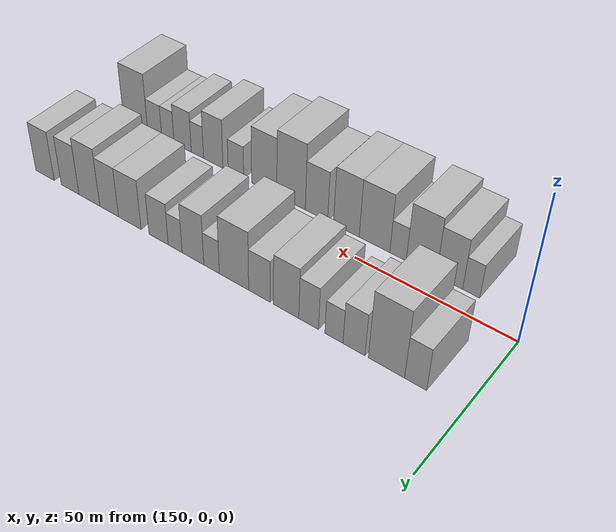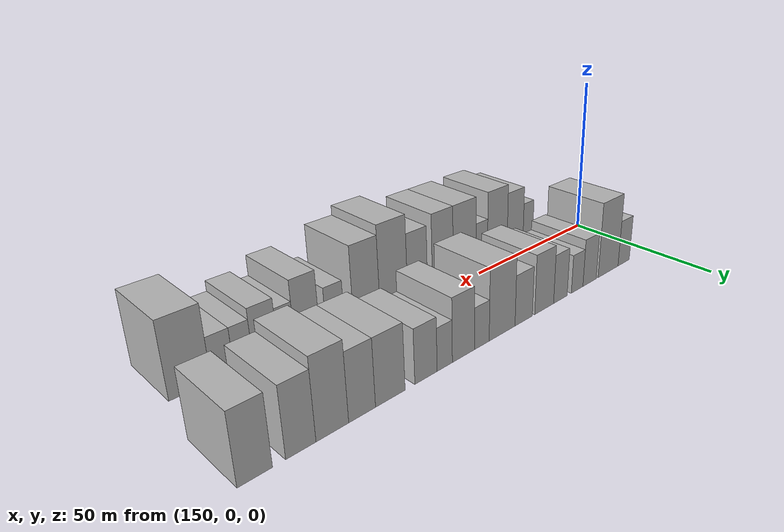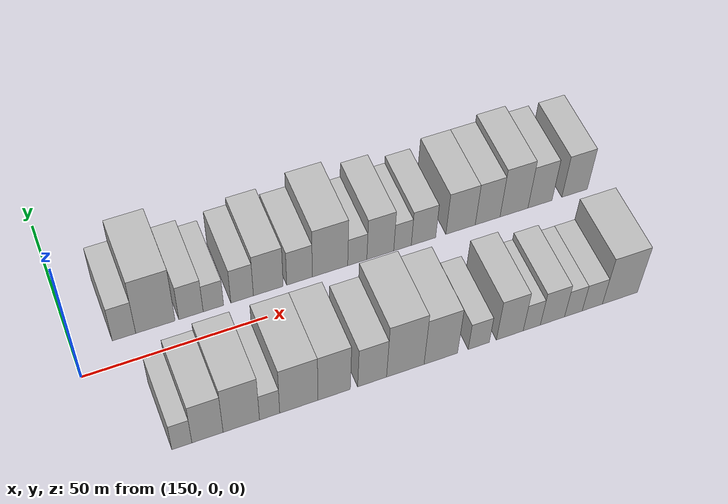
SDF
<sdf version="1.6">
 <world name="default">
  <model name="building_16">
   <static>1</static>
   <pose>163.4410 17.5000 0 0.000000 0.000000 1.570796</pose>
   <link name="link">
    <pose>0 0 7.50 0 0 0</pose>
    <collision name="collision"><geometry><box><size>20.0000 6.3091 15.0000</size></box></geometry></collision>
    <visual name="visual">
     <cast_shadows>0</cast_shadows>
     <geometry><box><size>20.0000 6.3091 15.0000</size></box></geometry>
     <material>
      <script>
       <uri>model://HANNAS_wall/materials/scripts</uri>
       <uri>model://HANNAS_wall/materials/textures</uri>
       <name>vrc/HANNAS_wall</name>
      </script>
     </material>
    </visual>
   </link>
  </model>
  <model name="building_17">
   <static>1</static>
   <pose>171.9208 17.5000 0 0.000000 0.000000 1.570796</pose>
   <link name="link">
    <pose>0 0 12.00 0 0 0</pose>
    <collision name="collision"><geometry><box><size>20.0000 10.6506 24.0000</size></box></geometry></collision>
    <visual name="visual">
     <cast_shadows>0</cast_shadows>
     <geometry><box><size>20.0000 10.6506 24.0000</size></box></geometry>
     <material>
      <script>
       <uri>model://HANNAS_wall/materials/scripts</uri>
       <uri>model://HANNAS_wall/materials/textures</uri>
       <name>vrc/HANNAS_wall</name>
      </script>
     </material>
    </visual>
   </link>
  </model>
  <model name="building_18">
   <static>1</static>
   <pose>181.5839 17.5000 0 0.000000 0.000000 1.570796</pose>
   <link name="link">
    <pose>0 0 7.50 0 0 0</pose>
    <collision name="collision"><geometry><box><size>20.0000 6.6756 15.0000</size></box></geometry></collision>
    <visual name="visual">
     <cast_shadows>0</cast_shadows>
     <geometry><box><size>20.0000 6.6756 15.0000</size></box></geometry>
     <material>
      <script>
       <uri>model://HANNAS_wall/materials/scripts</uri>
       <uri>model://HANNAS_wall/materials/textures</uri>
       <name>vrc/HANNAS_wall</name>
      </script>
     </material>
    </visual>
   </link>
  </model>
  <model name="building_19">
   <static>1</static>
   <pose>187.7343 17.5000 0 0.000000 0.000000 1.570796</pose>
   <link name="link">
    <pose>0 0 6.00 0 0 0</pose>
    <collision name="collision"><geometry><box><size>20.0000 5.6251 12.0000</size></box></geometry></collision>
    <visual name="visual">
     <cast_shadows>0</cast_shadows>
     <geometry><box><size>20.0000 5.6251 12.0000</size></box></geometry>
     <material>
      <script>
       <uri>model://HANNAS_wall/materials/scripts</uri>
       <uri>model://HANNAS_wall/materials/textures</uri>
       <name>vrc/HANNAS_wall</name>
      </script>
     </material>
    </visual>
   </link>
  </model>
  <model name="building_20">
   <static>1</static>
   <pose>195.6751 17.5000 0 0.000000 0.000000 1.570796</pose>
   <link name="link">
    <pose>0 0 7.50 0 0 0</pose>
    <collision name="collision"><geometry><box><size>20.0000 6.2567 15.0000</size></box></geometry></collision>
    <visual name="visual">
     <cast_shadows>0</cast_shadows>
     <geometry><box><size>20.0000 6.2567 15.0000</size></box></geometry>
     <material>
      <script>
       <uri>model://HANNAS_wall/materials/scripts</uri>
       <uri>model://HANNAS_wall/materials/textures</uri>
       <name>vrc/HANNAS_wall</name>
      </script>
     </material>
    </visual>
   </link>
  </model>
  <model name="building_21">
   <static>1</static>
   <pose>202.9608 17.5000 0 0.000000 0.000000 1.570796</pose>
   <link name="link">
    <pose>0 0 9.00 0 0 0</pose>
    <collision name="collision"><geometry><box><size>20.0000 8.3146 18.0000</size></box></geometry></collision>
    <visual name="visual">
     <cast_shadows>0</cast_shadows>
     <geometry><box><size>20.0000 8.3146 18.0000</size></box></geometry>
     <material>
      <script>
       <uri>model://HANNAS_wall/materials/scripts</uri>
       <uri>model://HANNAS_wall/materials/textures</uri>
       <name>vrc/HANNAS_wall</name>
      </script>
     </material>
    </visual>
   </link>
  </model>
  <model name="building_22">
   <static>1</static>
   <pose>211.7197 17.5000 0 0.000000 0.000000 1.570796</pose>
   <link name="link">
    <pose>0 0 7.50 0 0 0</pose>
    <collision name="collision"><geometry><box><size>20.0000 7.2033 15.0000</size></box></geometry></collision>
    <visual name="visual">
     <cast_shadows>0</cast_shadows>
     <geometry><box><size>20.0000 7.2033 15.0000</size></box></geometry>
     <material>
      <script>
       <uri>model://HANNAS_wall/materials/scripts</uri>
       <uri>model://HANNAS_wall/materials/textures</uri>
       <name>vrc/HANNAS_wall</name>
      </script>
     </material>
    </visual>
   </link>
  </model>
  <model name="building_23">
   <static>1</static>
   <pose>220.3678 17.5000 0 0.000000 0.000000 1.570796</pose>
   <link name="link">
    <pose>0 0 10.50 0 0 0</pose>
    <collision name="collision"><geometry><box><size>20.0000 10.0928 21.0000</size></box></geometry></collision>
    <visual name="visual">
     <cast_shadows>0</cast_shadows>
     <geometry><box><size>20.0000 10.0928 21.0000</size></box></geometry>
     <material>
      <script>
       <uri>model://HANNAS_wall/materials/scripts</uri>
       <uri>model://HANNAS_wall/materials/textures</uri>
       <name>vrc/HANNAS_wall</name>
      </script>
     </material>
    </visual>
   </link>
  </model>
  <model name="building_24">
   <static>1</static>
   <pose>228.1583 17.5000 0 0.000000 0.000000 1.570796</pose>
   <link name="link">
    <pose>0 0 6.00 0 0 0</pose>
    <collision name="collision"><geometry><box><size>20.0000 5.4883 12.0000</size></box></geometry></collision>
    <visual name="visual">
     <cast_shadows>0</cast_shadows>
     <geometry><box><size>20.0000 5.4883 12.0000</size></box></geometry>
     <material>
      <script>
       <uri>model://HANNAS_wall/materials/scripts</uri>
       <uri>model://HANNAS_wall/materials/textures</uri>
       <name>vrc/HANNAS_wall</name>
      </script>
     </material>
    </visual>
   </link>
  </model>
  <model name="building_25">
   <static>1</static>
   <pose>234.7926 17.5000 0 0.000000 0.000000 1.570796</pose>
   <link name="link">
    <pose>0 0 9.00 0 0 0</pose>
    <collision name="collision"><geometry><box><size>20.0000 7.7801 18.0000</size></box></geometry></collision>
    <visual name="visual">
     <cast_shadows>0</cast_shadows>
     <geometry><box><size>20.0000 7.7801 18.0000</size></box></geometry>
     <material>
      <script>
       <uri>model://HANNAS_wall/materials/scripts</uri>
       <uri>model://HANNAS_wall/materials/textures</uri>
       <name>vrc/HANNAS_wall</name>
      </script>
     </material>
    </visual>
   </link>
  </model>
  <model name="building_26">
   <static>1</static>
   <pose>241.2350 17.5000 0 0.000000 0.000000 1.570796</pose>
   <link name="link">
    <pose>0 0 6.00 0 0 0</pose>
    <collision name="collision"><geometry><box><size>20.0000 5.1048 12.0000</size></box></geometry></collision>
    <visual name="visual">
     <cast_shadows>0</cast_shadows>
     <geometry><box><size>20.0000 5.1048 12.0000</size></box></geometry>
     <material>
      <script>
       <uri>model://HANNAS_wall/materials/scripts</uri>
       <uri>model://HANNAS_wall/materials/textures</uri>
       <name>vrc/HANNAS_wall</name>
      </script>
     </material>
    </visual>
   </link>
  </model>
  <model name="building_27">
   <static>1</static>
   <pose>247.3665 17.5000 0 0.000000 0.000000 1.570796</pose>
   <link name="link">
    <pose>0 0 7.50 0 0 0</pose>
    <collision name="collision"><geometry><box><size>20.0000 7.1582 15.0000</size></box></geometry></collision>
    <visual name="visual">
     <cast_shadows>0</cast_shadows>
     <geometry><box><size>20.0000 7.1582 15.0000</size></box></geometry>
     <material>
      <script>
       <uri>model://HANNAS_wall/materials/scripts</uri>
       <uri>model://HANNAS_wall/materials/textures</uri>
       <name>vrc/HANNAS_wall</name>
      </script>
     </material>
    </visual>
   </link>
  </model>
  <model name="building_28">
   <static>1</static>
   <pose>258.2978 17.5000 0 0.000000 0.000000 1.570796</pose>
   <link name="link">
    <pose>0 0 9.00 0 0 0</pose>
    <collision name="collision"><geometry><box><size>20.0000 8.7044 18.0000</size></box></geometry></collision>
    <visual name="visual">
     <cast_shadows>0</cast_shadows>
     <geometry><box><size>20.0000 8.7044 18.0000</size></box></geometry>
     <material>
      <script>
       <uri>model://HANNAS_wall/materials/scripts</uri>
       <uri>model://HANNAS_wall/materials/textures</uri>
       <name>vrc/HANNAS_wall</name>
      </script>
     </material>
    </visual>
   </link>
  </model>
  <model name="building_29">
   <static>1</static>
   <pose>266.3484 17.5000 0 0.000000 0.000000 1.570796</pose>
   <link name="link">
    <pose>0 0 9.00 0 0 0</pose>
    <collision name="collision"><geometry><box><size>20.0000 7.3968 18.0000</size></box></geometry></collision>
    <visual name="visual">
     <cast_shadows>0</cast_shadows>
     <geometry><box><size>20.0000 7.3968 18.0000</size></box></geometry>
     <material>
      <script>
       <uri>model://HANNAS_wall/materials/scripts</uri>
       <uri>model://HANNAS_wall/materials/textures</uri>
       <name>vrc/HANNAS_wall</name>
      </script>
     </material>
    </visual>
   </link>
  </model>
  <model name="building_30">
   <static>1</static>
   <pose>274.2600 17.5000 0 0.000000 0.000000 1.570796</pose>
   <link name="link">
    <pose>0 0 10.50 0 0 0</pose>
    <collision name="collision"><geometry><box><size>20.0000 8.4264 21.0000</size></box></geometry></collision>
    <visual name="visual">
     <cast_shadows>0</cast_shadows>
     <geometry><box><size>20.0000 8.4264 21.0000</size></box></geometry>
     <material>
      <script>
       <uri>model://HANNAS_wall/materials/scripts</uri>
       <uri>model://HANNAS_wall/materials/textures</uri>
       <name>vrc/HANNAS_wall</name>
      </script>
     </material>
    </visual>
   </link>
  </model>
  <model name="building_31">
   <static>1</static>
   <pose>282.1280 17.5000 0 0.000000 0.000000 1.570796</pose>
   <link name="link">
    <pose>0 0 9.00 0 0 0</pose>
    <collision name="collision"><geometry><box><size>20.0000 7.3095 18.0000</size></box></geometry></collision>
    <visual name="visual">
     <cast_shadows>0</cast_shadows>
     <geometry><box><size>20.0000 7.3095 18.0000</size></box></geometry>
     <material>
      <script>
       <uri>model://HANNAS_wall/materials/scripts</uri>
       <uri>model://HANNAS_wall/materials/textures</uri>
       <name>vrc/HANNAS_wall</name>
      </script>
     </material>
    </visual>
   </link>
  </model>
  <model name="building_32">
   <static>1</static>
   <pose>292.6877 17.5000 0 0.000000 0.000000 1.570796</pose>
   <link name="link">
    <pose>0 0 9.00 0 0 0</pose>
    <collision name="collision"><geometry><box><size>20.0000 7.8099 18.0000</size></box></geometry></collision>
    <visual name="visual">
     <cast_shadows>0</cast_shadows>
     <geometry><box><size>20.0000 7.8099 18.0000</size></box></geometry>
     <material>
      <script>
       <uri>model://HANNAS_wall/materials/scripts</uri>
       <uri>model://HANNAS_wall/materials/textures</uri>
       <name>vrc/HANNAS_wall</name>
      </script>
     </material>
    </visual>
   </link>
  </model>
  <model name="building_49">
   <static>1</static>
   <pose>167.9125 -17.5000 0 0.000000 0.000000 1.570796</pose>
   <link name="link">
    <pose>0 0 6.00 0 0 0</pose>
    <collision name="collision"><geometry><box><size>20.0000 5.1783 12.0000</size></box></geometry></collision>
    <visual name="visual">
     <cast_shadows>0</cast_shadows>
     <geometry><box><size>20.0000 5.1783 12.0000</size></box></geometry>
     <material>
      <script>
       <uri>model://HANNAS_wall/materials/scripts</uri>
       <uri>model://HANNAS_wall/materials/textures</uri>
       <name>vrc/HANNAS_wall</name>
      </script>
     </material>
    </visual>
   </link>
  </model>
  <model name="building_50">
   <static>1</static>
   <pose>174.5555 -17.5000 0 0.000000 0.000000 1.570796</pose>
   <link name="link">
    <pose>0 0 9.00 0 0 0</pose>
    <collision name="collision"><geometry><box><size>20.0000 8.1077 18.0000</size></box></geometry></collision>
    <visual name="visual">
     <cast_shadows>0</cast_shadows>
     <geometry><box><size>20.0000 8.1077 18.0000</size></box></geometry>
     <material>
      <script>
       <uri>model://HANNAS_wall/materials/scripts</uri>
       <uri>model://HANNAS_wall/materials/textures</uri>
       <name>vrc/HANNAS_wall</name>
      </script>
     </material>
    </visual>
   </link>
  </model>
  <model name="building_51">
   <static>1</static>
   <pose>183.3795 -17.5000 0 0.000000 0.000000 1.570796</pose>
   <link name="link">
    <pose>0 0 10.50 0 0 0</pose>
    <collision name="collision"><geometry><box><size>20.0000 9.5402 21.0000</size></box></geometry></collision>
    <visual name="visual">
     <cast_shadows>0</cast_shadows>
     <geometry><box><size>20.0000 9.5402 21.0000</size></box></geometry>
     <material>
      <script>
       <uri>model://HANNAS_wall/materials/scripts</uri>
       <uri>model://HANNAS_wall/materials/textures</uri>
       <name>vrc/HANNAS_wall</name>
      </script>
     </material>
    </visual>
   </link>
  </model>
  <model name="building_52">
   <static>1</static>
   <pose>190.8176 -17.5000 0 0.000000 0.000000 1.570796</pose>
   <link name="link">
    <pose>0 0 6.00 0 0 0</pose>
    <collision name="collision"><geometry><box><size>20.0000 5.3360 12.0000</size></box></geometry></collision>
    <visual name="visual">
     <cast_shadows>0</cast_shadows>
     <geometry><box><size>20.0000 5.3360 12.0000</size></box></geometry>
     <material>
      <script>
       <uri>model://HANNAS_wall/materials/scripts</uri>
       <uri>model://HANNAS_wall/materials/textures</uri>
       <name>vrc/HANNAS_wall</name>
      </script>
     </material>
    </visual>
   </link>
  </model>
  <model name="building_53">
   <static>1</static>
   <pose>198.5535 -17.5000 0 0.000000 0.000000 1.570796</pose>
   <link name="link">
    <pose>0 0 10.50 0 0 0</pose>
    <collision name="collision"><geometry><box><size>20.0000 10.1357 21.0000</size></box></geometry></collision>
    <visual name="visual">
     <cast_shadows>0</cast_shadows>
     <geometry><box><size>20.0000 10.1357 21.0000</size></box></geometry>
     <material>
      <script>
       <uri>model://HANNAS_wall/materials/scripts</uri>
       <uri>model://HANNAS_wall/materials/textures</uri>
       <name>vrc/HANNAS_wall</name>
      </script>
     </material>
    </visual>
   </link>
  </model>
  <model name="building_54">
   <static>1</static>
   <pose>208.0054 -17.5000 0 0.000000 0.000000 1.570796</pose>
   <link name="link">
    <pose>0 0 10.50 0 0 0</pose>
    <collision name="collision"><geometry><box><size>20.0000 8.7681 21.0000</size></box></geometry></collision>
    <visual name="visual">
     <cast_shadows>0</cast_shadows>
     <geometry><box><size>20.0000 8.7681 21.0000</size></box></geometry>
     <material>
      <script>
       <uri>model://HANNAS_wall/materials/scripts</uri>
       <uri>model://HANNAS_wall/materials/textures</uri>
       <name>vrc/HANNAS_wall</name>
      </script>
     </material>
    </visual>
   </link>
  </model>
  <model name="building_55">
   <static>1</static>
   <pose>218.3244 -17.5000 0 0.000000 0.000000 1.570796</pose>
   <link name="link">
    <pose>0 0 9.00 0 0 0</pose>
    <collision name="collision"><geometry><box><size>20.0000 7.8699 18.0000</size></box></geometry></collision>
    <visual name="visual">
     <cast_shadows>0</cast_shadows>
     <geometry><box><size>20.0000 7.8699 18.0000</size></box></geometry>
     <material>
      <script>
       <uri>model://HANNAS_wall/materials/scripts</uri>
       <uri>model://HANNAS_wall/materials/textures</uri>
       <name>vrc/HANNAS_wall</name>
      </script>
     </material>
    </visual>
   </link>
  </model>
  <model name="building_56">
   <static>1</static>
   <pose>227.4224 -17.5000 0 0.000000 0.000000 1.570796</pose>
   <link name="link">
    <pose>0 0 12.00 0 0 0</pose>
    <collision name="collision"><geometry><box><size>20.0000 10.3261 24.0000</size></box></geometry></collision>
    <visual name="visual">
     <cast_shadows>0</cast_shadows>
     <geometry><box><size>20.0000 10.3261 24.0000</size></box></geometry>
     <material>
      <script>
       <uri>model://HANNAS_wall/materials/scripts</uri>
       <uri>model://HANNAS_wall/materials/textures</uri>
       <name>vrc/HANNAS_wall</name>
      </script>
     </material>
    </visual>
   </link>
  </model>
  <model name="building_57">
   <static>1</static>
   <pose>237.2418 -17.5000 0 0.000000 0.000000 1.570796</pose>
   <link name="link">
    <pose>0 0 10.50 0 0 0</pose>
    <collision name="collision"><geometry><box><size>20.0000 9.3127 21.0000</size></box></geometry></collision>
    <visual name="visual">
     <cast_shadows>0</cast_shadows>
     <geometry><box><size>20.0000 9.3127 21.0000</size></box></geometry>
     <material>
      <script>
       <uri>model://HANNAS_wall/materials/scripts</uri>
       <uri>model://HANNAS_wall/materials/textures</uri>
       <name>vrc/HANNAS_wall</name>
      </script>
     </material>
    </visual>
   </link>
  </model>
  <model name="building_58">
   <static>1</static>
   <pose>247.8641 -17.5000 0 0.000000 0.000000 1.570796</pose>
   <link name="link">
    <pose>0 0 6.00 0 0 0</pose>
    <collision name="collision"><geometry><box><size>20.0000 5.9320 12.0000</size></box></geometry></collision>
    <visual name="visual">
     <cast_shadows>0</cast_shadows>
     <geometry><box><size>20.0000 5.9320 12.0000</size></box></geometry>
     <material>
      <script>
       <uri>model://HANNAS_wall/materials/scripts</uri>
       <uri>model://HANNAS_wall/materials/textures</uri>
       <name>vrc/HANNAS_wall</name>
      </script>
     </material>
    </visual>
   </link>
  </model>
  <model name="building_59">
   <static>1</static>
   <pose>256.6462 -17.5000 0 0.000000 0.000000 1.570796</pose>
   <link name="link">
    <pose>0 0 9.00 0 0 0</pose>
    <collision name="collision"><geometry><box><size>20.0000 7.6322 18.0000</size></box></geometry></collision>
    <visual name="visual">
     <cast_shadows>0</cast_shadows>
     <geometry><box><size>20.0000 7.6322 18.0000</size></box></geometry>
     <material>
      <script>
       <uri>model://HANNAS_wall/materials/scripts</uri>
       <uri>model://HANNAS_wall/materials/textures</uri>
       <name>vrc/HANNAS_wall</name>
      </script>
     </material>
    </visual>
   </link>
  </model>
  <model name="building_60">
   <static>1</static>
   <pose>262.9153 -17.5000 0 0.000000 0.000000 1.570796</pose>
   <link name="link">
    <pose>0 0 6.00 0 0 0</pose>
    <collision name="collision"><geometry><box><size>20.0000 4.9061 12.0000</size></box></geometry></collision>
    <visual name="visual">
     <cast_shadows>0</cast_shadows>
     <geometry><box><size>20.0000 4.9061 12.0000</size></box></geometry>
     <material>
      <script>
       <uri>model://HANNAS_wall/materials/scripts</uri>
       <uri>model://HANNAS_wall/materials/textures</uri>
       <name>vrc/HANNAS_wall</name>
      </script>
     </material>
    </visual>
   </link>
  </model>
  <model name="building_61">
   <static>1</static>
   <pose>268.8503 -17.5000 0 0.000000 0.000000 1.570796</pose>
   <link name="link">
    <pose>0 0 7.50 0 0 0</pose>
    <collision name="collision"><geometry><box><size>20.0000 6.9639 15.0000</size></box></geometry></collision>
    <visual name="visual">
     <cast_shadows>0</cast_shadows>
     <geometry><box><size>20.0000 6.9639 15.0000</size></box></geometry>
     <material>
      <script>
       <uri>model://HANNAS_wall/materials/scripts</uri>
       <uri>model://HANNAS_wall/materials/textures</uri>
       <name>vrc/HANNAS_wall</name>
      </script>
     </material>
    </visual>
   </link>
  </model>
  <model name="building_62">
   <static>1</static>
   <pose>274.8856 -17.5000 0 0.000000 0.000000 1.570796</pose>
   <link name="link">
    <pose>0 0 6.00 0 0 0</pose>
    <collision name="collision"><geometry><box><size>20.0000 5.1068 12.0000</size></box></geometry></collision>
    <visual name="visual">
     <cast_shadows>0</cast_shadows>
     <geometry><box><size>20.0000 5.1068 12.0000</size></box></geometry>
     <material>
      <script>
       <uri>model://HANNAS_wall/materials/scripts</uri>
       <uri>model://HANNAS_wall/materials/textures</uri>
       <name>vrc/HANNAS_wall</name>
      </script>
     </material>
    </visual>
   </link>
  </model>
  <model name="building_63">
   <static>1</static>
   <pose>280.3879 -17.5000 0 0.000000 0.000000 1.570796</pose>
   <link name="link">
    <pose>0 0 6.00 0 0 0</pose>
    <collision name="collision"><geometry><box><size>20.0000 5.8977 12.0000</size></box></geometry></collision>
    <visual name="visual">
     <cast_shadows>0</cast_shadows>
     <geometry><box><size>20.0000 5.8977 12.0000</size></box></geometry>
     <material>
      <script>
       <uri>model://HANNAS_wall/materials/scripts</uri>
       <uri>model://HANNAS_wall/materials/textures</uri>
       <name>vrc/HANNAS_wall</name>
      </script>
     </material>
    </visual>
   </link>
  </model>
  <model name="building_64">
   <static>1</static>
   <pose>288.4820 -17.5000 0 0.000000 0.000000 1.570796</pose>
   <link name="link">
    <pose>0 0 10.50 0 0 0</pose>
    <collision name="collision"><geometry><box><size>20.0000 10.2904 21.0000</size></box></geometry></collision>
    <visual name="visual">
     <cast_shadows>0</cast_shadows>
     <geometry><box><size>20.0000 10.2904 21.0000</size></box></geometry>
     <material>
      <script>
       <uri>model://HANNAS_wall/materials/scripts</uri>
       <uri>model://HANNAS_wall/materials/textures</uri>
       <name>vrc/HANNAS_wall</name>
      </script>
     </material>
    </visual>
   </link>
  </model>
 </world>
</sdf>
